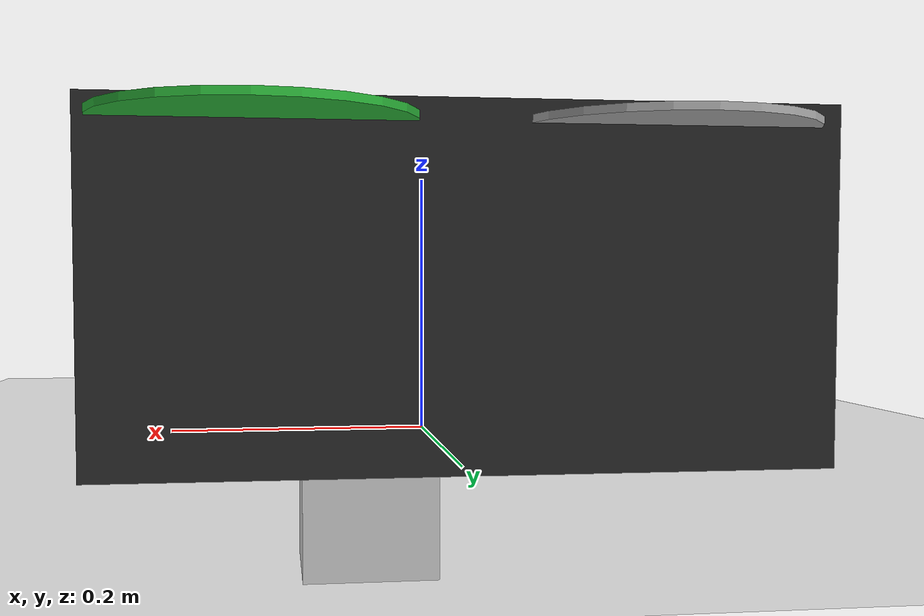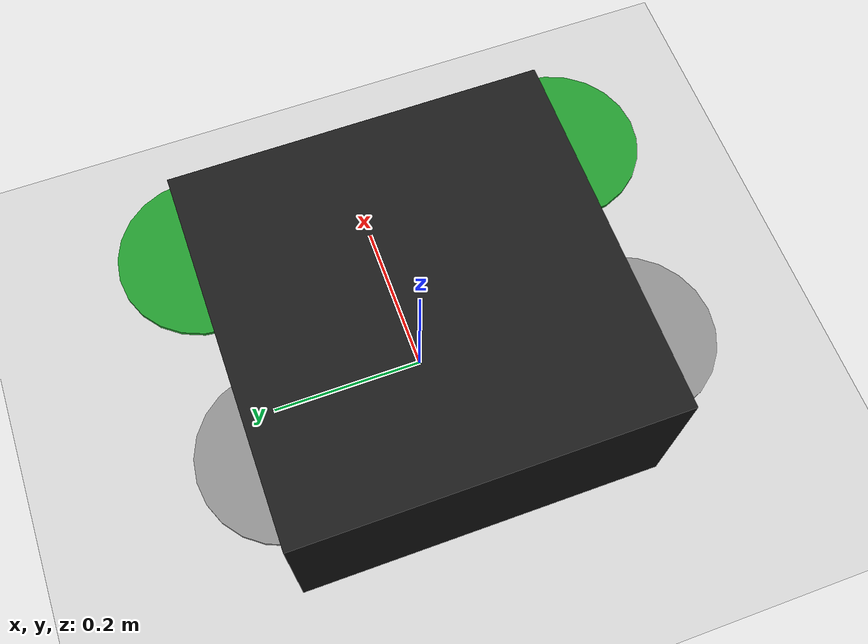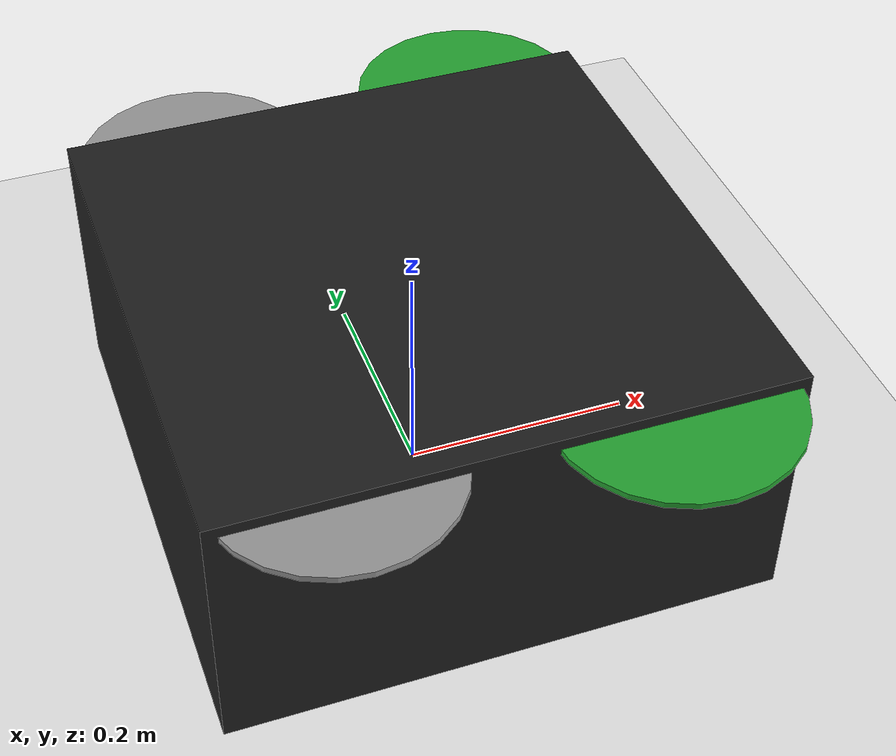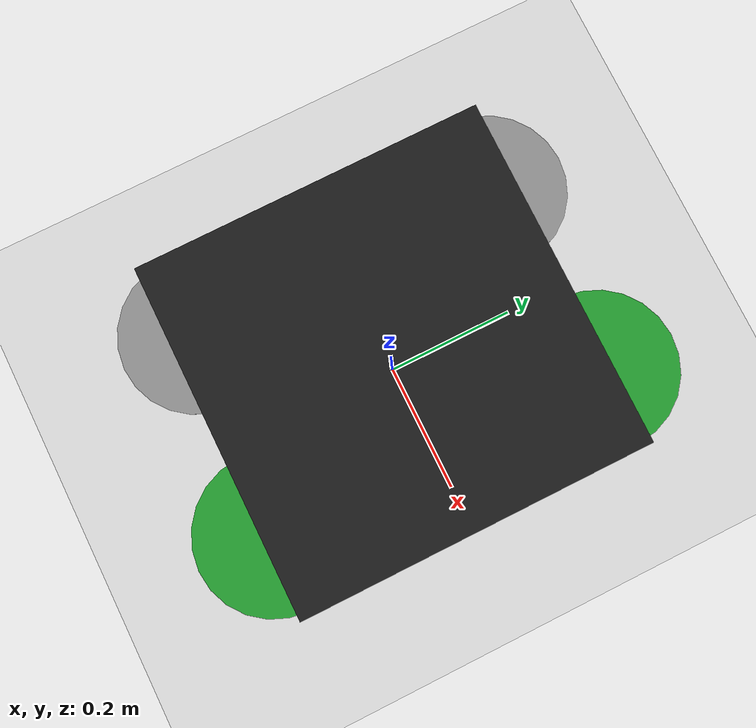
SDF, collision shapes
<?xml version='1.0'?>
<sdf version='1.5'>
  <model name='iris_fpv_cam'>

    <include>
        <uri>model://my_ground_plane</uri>
    </include>

    <include>
      <uri>model://iris</uri>
    </include>

    <include>
      <uri>model://fpv_cam</uri>
      <pose>0 0 0 0 1.5708 0</pose>
    </include>
    <joint name="fpv_cam_joint" type="fixed">
      <child>fpv_cam::link</child>
      <parent>iris::base_link</parent>
      <axis>
        <xyz>0 0 1</xyz>
        <limit>
          <upper>0</upper>
          <lower>0</lower>
        </limit>
      </axis>
    </joint>

  </model>
</sdf>

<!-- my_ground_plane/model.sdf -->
<sdf version="1.4">
<model name="my_ground_plane">
  <static>true</static>
    <link name="link">
      <collision name='collision'>
        <geometry>
          <plane>
            <normal>0 0 1</normal>
            <size>150 150</size>
          </plane>
        </geometry>
        <surface>
          <friction>
            <ode>
              <mu>100</mu>
              <mu2>100</mu2>
              <slip1>0.0</slip1>
              <slip2>0.0</slip2>
              <fdir1>0 0 0</fdir1>
            </ode>
          </friction>
          <bounce>
            <restitution_coefficient>0</restitution_coefficient>
            <threshold>1e+06</threshold>
          </bounce>
          <contact>
            <ode>
              <kp>100000000.0</kp>
              <kd>10000.0</kd>
              <max_vel>0.01</max_vel>
              <min_depth>0.0001</min_depth>
            </ode>
          </contact>
        </surface>
        <max_contacts>10</max_contacts>
      </collision>
      <visual name="visual">
        <cast_shadows>false</cast_shadows>
        <geometry>
          <plane>
            <normal>0 0 1</normal>
            <size>40 40</size>
          </plane>
        </geometry>
      </visual>
    </link>
  </model>
</sdf>

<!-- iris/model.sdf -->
<sdf version='1.5'>
  <model name='iris-1'>
    <pose>0 0 0.194923 0 0 0</pose>
    <link name='iris-1-base_link'>
      <velocity_decay>
        <linear>0.0</linear>
        <angular>0.0</angular>
      </velocity_decay>
      <inertial>
        <pose>0 0 0 0 0 0</pose>
        <mass>1.5</mass>
        <inertia>
          <ixx>0.008</ixx>
          <ixy>0</ixy>
          <ixz>0</ixz>
          <iyy>0.015</iyy>
          <iyz>0</iyz>
          <izz>0.017</izz>
        </inertia>
      </inertial>
      <collision name='iris-1-base_link_collision'>
        <pose>0 0 -0.08 0 0 0</pose>
        <geometry>
          <box>
            <size>0.47 0.47 0.23</size>
          </box>
        </geometry>
        <surface>
          <contact>
            <ode>
              <max_vel>100.0</max_vel>
              <min_depth>0.001</min_depth>
            </ode>
          </contact>
          <friction>
            <ode>
              <mu>100000.0</mu>
              <mu2>100000.0</mu2>
            </ode>
          </friction>
        </surface>
      </collision>
      <visual name='iris-1-base_link_visual'>
        <geometry>
          <mesh>
            <uri>model://formation/vehicle1/iris/meshes/iris.dae</uri>
          </mesh>
        </geometry>
        <material>
          <script>
            <name>Gazebo/Black</name>
          </script>
        </material>
      </visual>

      <visual name='iris-1-front_left_leg_visual'>
        <pose>0.123 0.22 -0.11 0 0 0</pose>
        <geometry>
          <cylinder>
            <radius>0.005</radius>
            <length>0.17</length>
          </cylinder>
        </geometry>
        <material>
          <script>
            <name>Gazebo/FlatBlack</name>
            <uri>file://media/materials/scripts/gazebo.material</uri>
          </script>
        </material>
      </visual>
      <visual name='iris-1-front_right_leg_visual'>
        <pose>0.123 -0.22 -0.11 0 0 0</pose>
        <geometry>
          <cylinder>
            <radius>0.005</radius>
            <length>0.17</length>
          </cylinder>
        </geometry>
        <material>
          <script>
            <name>Gazebo/FlatBlack</name>
            <uri>file://media/materials/scripts/gazebo.material</uri>
          </script>
        </material>
      </visual>
      <visual name='iris-1-rear_left_leg_visual'>
        <pose>-0.140 0.21 -0.11 0 0 0</pose>
        <geometry>
          <cylinder>
            <radius>0.005</radius>
            <length>0.17</length>
          </cylinder>
        </geometry>
        <material>
          <script>
            <name>Gazebo/FlatBlack</name>
            <uri>file://media/materials/scripts/gazebo.material</uri>
          </script>
        </material>
      </visual>
      <visual name='iris-1-rear_right_leg_visual'>
        <pose>-0.140 -0.21 -0.11 0 0 0</pose>
        <geometry>
          <cylinder>
            <radius>0.005</radius>
            <length>0.17</length>
          </cylinder>
        </geometry>
        <material>
          <script>
            <name>Gazebo/FlatBlack</name>
            <uri>file://media/materials/scripts/gazebo.material</uri>
          </script>
        </material>
      </visual>
    </link>
    <link name='iris-1/ground_truth/odometry_sensorgt_link'>
      <pose>0 0 0 0 -0 0</pose>
      <inertial>
        <pose>0 0 0 0 -0 0</pose>
        <mass>0.15</mass>
        <inertia>
          <ixx>0.0001</ixx>
          <ixy>0</ixy>
          <ixz>0</ixz>
          <iyy>0.0002</iyy>
          <iyz>0</iyz>
          <izz>0.0002</izz>
        </inertia>
      </inertial>
    </link>
    <joint name='iris-1/ground_truth/odometry_sensorgt_joint' type='revolute'>
      <child>iris-1/ground_truth/odometry_sensorgt_link</child>
      <parent>iris-1-base_link</parent>
      <axis>
        <xyz>0 0 1</xyz>
        <limit>
          <lower>0</lower>
          <upper>0</upper>
          <effort>0</effort>
          <velocity>0</velocity>
        </limit>
        <dynamics>
          <damping>1.0</damping>
        </dynamics>
        <use_parent_model_frame>1</use_parent_model_frame>
      </axis>
      <physics>
        <ode>
          <implicit_spring_damper>1</implicit_spring_damper>
        </ode>
      </physics>
    </joint>
    <link name='iris-1/imu_link'>
      <inertial>
        <pose>0 0 0 0 0 0</pose>
        <mass>0.15</mass>
        <inertia>
          <ixx>0.00001</ixx>
          <ixy>0</ixy>
          <ixz>0</ixz>
          <iyy>0.00002</iyy>
          <iyz>0</iyz>
          <izz>0.00002</izz>
        </inertia>
      </inertial>
      <sensor name="iris-1-imu_sensor" type="imu">
        <pose>0 0 0 3.141593 0 0</pose>
        <always_on>1</always_on>
        <update_rate>1000.0</update_rate>
      </sensor>
    </link>
    <joint name='iris-1/imu_joint' type='revolute'>
      <child>iris-1/imu_link</child>
      <parent>iris-1-base_link</parent>
      <axis>
        <xyz>0 0 1</xyz>
        <limit>
          <lower>0</lower>
          <upper>0</upper>
          <effort>0</effort>
          <velocity>0</velocity>
        </limit>
        <dynamics>
          <damping>1.0</damping>
        </dynamics>
        <use_parent_model_frame>1</use_parent_model_frame>
      </axis>
      <physics>
        <ode>
          <implicit_spring_damper>1</implicit_spring_damper>
        </ode>
      </physics>
    </joint>
    <link name='iris-1-rotor_0'>
      <pose>0.13 -0.22 0.023 0 -0 0</pose>
      <inertial>
        <pose>0 0 0 0 -0 0</pose>
        <mass>0.025</mass>
        <inertia>
          <ixx>9.75e-06</ixx>
          <ixy>0</ixy>
          <ixz>0</ixz>
          <iyy>0.000166704</iyy>
          <iyz>0</iyz>
          <izz>0.000167604</izz>
        </inertia>
      </inertial>
      <collision name='iris-1-rotor_0_collision'>
        <pose>0 0 0 0 -0 0</pose>
        <geometry>
          <cylinder>
            <length>0.005</length>
            <radius>0.1</radius>
          </cylinder>
        </geometry>
        <surface>
          <contact>
            <ode/>
          </contact>
          <friction>
            <ode/>
          </friction>
        </surface>
      </collision>
      <visual name='iris-1-rotor_0_visual'>
        <pose>0 0 0 0 -0 0</pose>
        <geometry>
          <mesh>
            <scale>1 1 1</scale>
            <uri>model://formation/vehicle1/iris/meshes/iris_prop_ccw.dae</uri>
          </mesh>
        </geometry>
        <material>
          <script>
            <name>Gazebo/Green</name>
            <uri>__default__</uri>
          </script>
        </material>
      </visual>
      <gravity>1</gravity>
      <velocity_decay/>
      <self_collide>0</self_collide>
    </link>
    <joint name='iris-1-rotor_0_joint' type='revolute'>
      <child>iris-1-rotor_0</child>
      <parent>iris-1-base_link</parent>
      <axis>
        <xyz>0 0 1</xyz>
        <limit>
          <lower>-1e+16</lower>
          <upper>1e+16</upper>
        </limit>
        <dynamics>
          <damping>0.004</damping>
        </dynamics>
        <use_parent_model_frame>1</use_parent_model_frame>
      </axis>
      <physics>
        <ode>
          <implicit_spring_damper>1</implicit_spring_damper>
        </ode>
      </physics>
    </joint>
    <link name='iris-1-rotor_1'>
      <pose>-0.13 0.2 0.023 0 -0 0</pose>
      <inertial>
        <pose>0 0 0 0 -0 0</pose>
        <mass>0.025</mass>
        <inertia>
          <ixx>9.75e-06</ixx>
          <ixy>0</ixy>
          <ixz>0</ixz>
          <iyy>0.000166704</iyy>
          <iyz>0</iyz>
          <izz>0.000167604</izz>
        </inertia>
      </inertial>
      <collision name='iris-1-rotor_1_collision'>
        <pose>0 0 0 0 -0 0</pose>
        <geometry>
          <cylinder>
            <length>0.005</length>
            <radius>0.1</radius>
          </cylinder>
        </geometry>
        <surface>
          <contact>
            <ode/>
          </contact>
          <friction>
            <ode/>
          </friction>
        </surface>
      </collision>
      <visual name='iris-1-rotor_1_visual'>
        <pose>0 0 0 0 -0 0</pose>
        <geometry>
          <mesh>
            <scale>1 1 1</scale>
            <uri>model://formation/vehicle1/iris/meshes/iris_prop_ccw.dae</uri>
          </mesh>
        </geometry>
        <material>
          <script>
            <name>Gazebo/Grey</name>
            <uri>__default__</uri>
          </script>
        </material>
      </visual>
      <gravity>1</gravity>
      <velocity_decay/>
      <self_collide>0</self_collide>
    </link>
    <joint name='iris-1-rotor_1_joint' type='revolute'>
      <child>iris-1-rotor_1</child>
      <parent>iris-1-base_link</parent>
      <axis>
        <xyz>0 0 1</xyz>
        <limit>
          <lower>-1e+16</lower>
          <upper>1e+16</upper>
        </limit>
        <dynamics>
          <damping>0.004</damping>
        </dynamics>
        <use_parent_model_frame>1</use_parent_model_frame>
      </axis>
      <physics>
        <ode>
          <implicit_spring_damper>1</implicit_spring_damper>
        </ode>
      </physics>
    </joint>
    <link name='iris-1-rotor_2'>
      <pose>0.13 0.22 0.023 0 -0 0</pose>
      <inertial>
        <pose>0 0 0 0 -0 0</pose>
        <mass>0.025</mass>
        <inertia>
          <ixx>9.75e-06</ixx>
          <ixy>0</ixy>
          <ixz>0</ixz>
          <iyy>0.000166704</iyy>
          <iyz>0</iyz>
          <izz>0.000167604</izz>
        </inertia>
      </inertial>
      <collision name='iris-1-rotor_2_collision'>
        <pose>0 0 0 0 -0 0</pose>
        <geometry>
          <cylinder>
            <length>0.005</length>
            <radius>0.1</radius>
          </cylinder>
        </geometry>
        <surface>
          <contact>
            <ode/>
          </contact>
          <friction>
            <ode/>
          </friction>
        </surface>
      </collision>
      <visual name='iris-1-rotor_2_visual'>
        <pose>0 0 0 0 -0 0</pose>
        <geometry>
          <mesh>
            <scale>1 1 1</scale>
            <uri>model://formation/vehicle1/iris/meshes/iris_prop_cw.dae</uri>
          </mesh>
        </geometry>
        <material>
          <script>
            <name>Gazebo/Green</name>
            <uri>__default__</uri>
          </script>
        </material>
      </visual>
      <gravity>1</gravity>
      <velocity_decay/>
      <self_collide>0</self_collide>
    </link>
    <joint name='iris-1-rotor_2_joint' type='revolute'>
      <child>iris-1-rotor_2</child>
      <parent>iris-1-base_link</parent>
      <axis>
        <xyz>0 0 1</xyz>
        <limit>
          <lower>-1e+16</lower>
          <upper>1e+16</upper>
        </limit>
        <dynamics>
          <damping>0.004</damping>
        </dynamics>
        <use_parent_model_frame>1</use_parent_model_frame>
      </axis>
      <physics>
        <ode>
          <implicit_spring_damper>1</implicit_spring_damper>
        </ode>
      </physics>
    </joint>
    <link name='iris-1-rotor_3'>
      <pose>-0.13 -0.2 0.023 0 -0 0</pose>
      <inertial>
        <pose>0 0 0 0 -0 0</pose>
        <mass>0.025</mass>
        <inertia>
          <ixx>9.75e-06</ixx>
          <ixy>0</ixy>
          <ixz>0</ixz>
          <iyy>0.000166704</iyy>
          <iyz>0</iyz>
          <izz>0.000167604</izz>
        </inertia>
      </inertial>
      <collision name='iris-1-rotor_3_collision'>
        <pose>0 0 0 0 -0 0</pose>
        <geometry>
          <cylinder>
            <length>0.005</length>
            <radius>0.1</radius>
          </cylinder>
        </geometry>
        <surface>
          <contact>
            <ode/>
          </contact>
          <friction>
            <ode/>
          </friction>
        </surface>
      </collision>
      <visual name='iris-1-rotor_3_visual'>
        <pose>0 0 0 0 -0 0</pose>
        <geometry>
          <mesh>
            <scale>1 1 1</scale>
            <uri>model://formation/vehicle1/iris/meshes/iris_prop_cw.dae</uri>
          </mesh>
        </geometry>
        <material>
          <script>
            <name>Gazebo/Grey</name>
            <uri>__default__</uri>
          </script>
        </material>
      </visual>
      <gravity>1</gravity>
      <velocity_decay/>
      <self_collide>0</self_collide>
    </link>
    <joint name='iris-1-rotor_3_joint' type='revolute'>
      <child>iris-1-rotor_3</child>
      <parent>iris-1-base_link</parent>
      <axis>
        <xyz>0 0 1</xyz>
        <limit>
          <lower>-1e+16</lower>
          <upper>1e+16</upper>
        </limit>
        <dynamics>
          <damping>0.004</damping>
        </dynamics>
        <use_parent_model_frame>1</use_parent_model_frame>
      </axis>
      <physics>
        <ode>
          <implicit_spring_damper>1</implicit_spring_damper>
        </ode>
      </physics>
    </joint>
    <static>0</static>
  </model>
</sdf>

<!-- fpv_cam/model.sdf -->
<sdf version='1.9'>
    <model name="fpv_cam">
        <pose>4 0 1.0 0 0.0 3.14</pose>
        <link name="fpv_cam/base_link">
        <pose>0.05 0.05 0.05 0 0 0</pose>
        <inertial>
            <mass>0.1</mass>
            <inertia>
            <ixx>0.000166667</ixx>
            <iyy>0.000166667</iyy>
            <izz>0.000166667</izz>
            </inertia>
        </inertial>
        <collision name="collision">
            <geometry>
            <box>
                <size>0.1 0.1 0.1</size>
            </box>
            </geometry>
        </collision>
        <visual name="visual">
            <geometry>
            <box>
                <size>0.01 0.03 0.028</size>
            </box>
            </geometry>
        </visual>
        <sensor name="camera" type="camera">
            <camera>
            <horizontal_fov>1.745</horizontal_fov>
            <image>
                <width>1280</width>
                <height>720</height>
            </image>
            <clip>
                <near>0.1</near>
                <far>1000</far>
            </clip>
            </camera>
            <always_on>1</always_on>
            <update_rate>30</update_rate>
            <visualize>true</visualize>
            <topic>camera</topic>
        </sensor>
        </link>
    </model>
</sdf>
